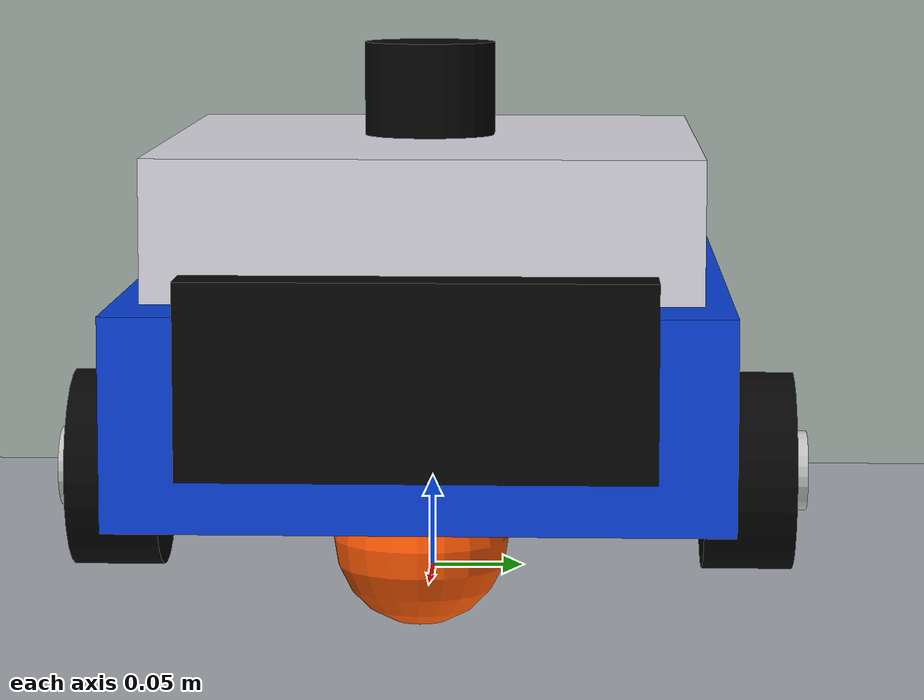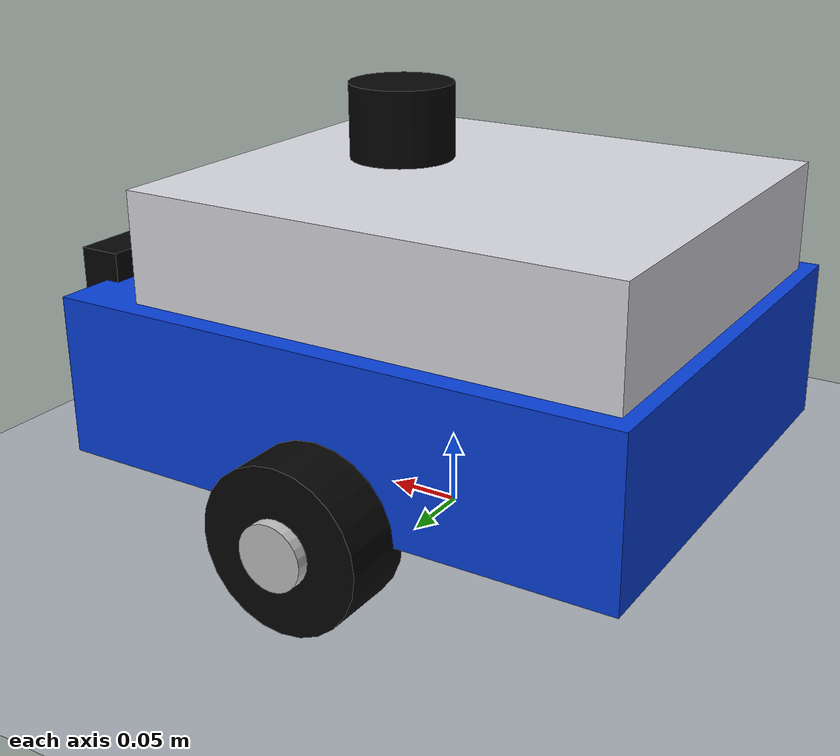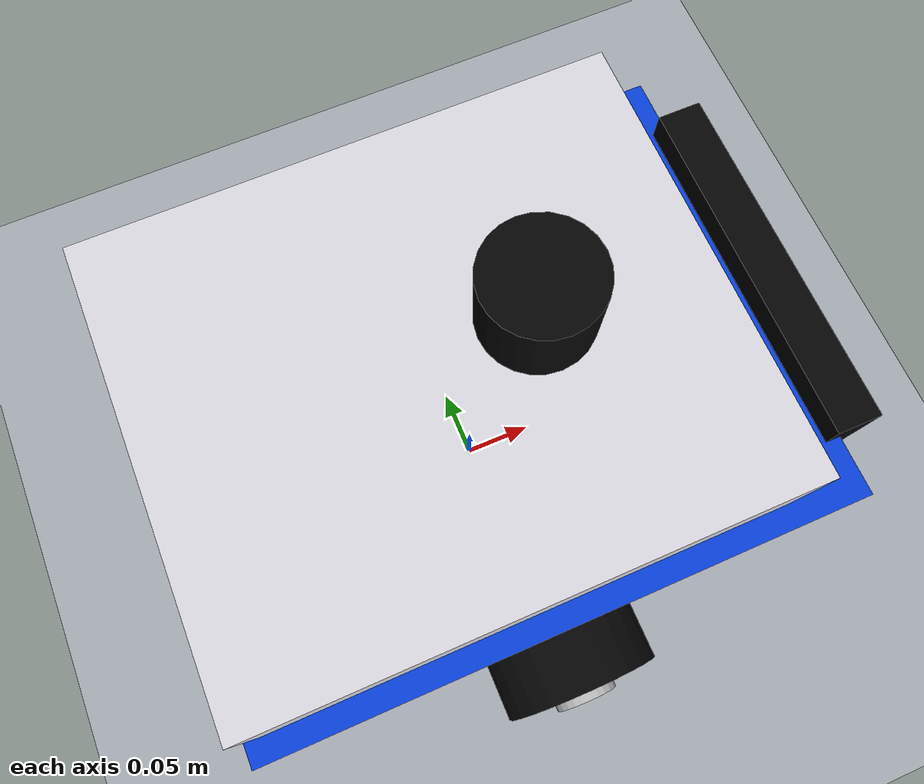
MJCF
<mujoco model="turtlebot3_waffle_pi">

    <option
        timestep="0.002"
        gravity="0 0 -9.81"
        integrator="Euler"/>

    <compiler angle="radian"/>

    <visual>
        <map
            znear="0.01"
            zfar="100"/>

        <quality
            shadowsize="2048"/>

        <headlight
            ambient="0.5 0.5 0.5"
            diffuse="0.8 0.8 0.8"
            specular="0.2 0.2 0.2"/>

        <global
            offwidth="1600"
            offheight="1000"/>
    </visual>

    <!-- DEFAULT PHYSICS                                   -->

    <default>

        <joint
            damping="0.5"
            armature="0.01"/>

        <geom
            condim="3"
            friction="1.5 0.5 0.1"/>

    </default>

    <!-- MATERIALS                                         -->

    <asset>

        <!-- Floor -->
        <material
            name="floor"
            rgba="0.65 0.67 0.70 1"/>

        <!-- Main blue chassis -->
        <material
            name="blue"
            rgba="0.03 0.25 0.85 1"/>

        <!-- Upper light body -->
        <material
            name="body_light"
            rgba="0.85 0.85 0.88 1"/>

        <!-- Black parts and wheels -->
        <material
            name="black"
            rgba="0.02 0.02 0.02 1"/>

        <!-- Wheel hubs -->
        <material
            name="hub"
            rgba="0.75 0.75 0.75 1"/>

        <!-- Orange caster -->
        <material
            name="orange"
            rgba="1.0 0.35 0.02 1"/>

    </asset>

    <!-- WORLD                                             -->

    <worldbody>

        <!-- Floor -->
        <geom
            name="floor"
            type="plane"
            pos="0 0 0"
            size="25 25 0.1"
            material="floor"/>

        <!-- Lighting -->
        <light
            name="key_light"
            pos="2 -3 5"
            directional="true"
            diffuse="1 1 1"
            specular="0.2 0.2 0.2"/>

        <light
            name="fill_light"
            pos="-3 2 4"
            directional="true"
            diffuse="0.6 0.6 0.6"/>

        <!-- TURTLEBOT3 WAFFLE PI                              -->

        <body
            name="base_link"
            pos="0 0 0.11">

            <!-- PLANAR MOVEMENT                                -->

            <joint
                name="base_x"
                type="slide"
                axis="1 0 0"
                damping="1"/>

            <joint
                name="base_y"
                type="slide"
                axis="0 1 0"
                damping="1"/>

            <joint
                name="base_yaw"
                type="hinge"
                axis="0 0 1"
                damping="1"/>

            <!-- MAIN CHASSIS                                   -->

            <geom
                name="base_chassis"
                type="box"
                pos="0 0 0"
                size="0.20 0.16 0.055"
                mass="2.0"
                material="blue"/>

            <!-- UPPER BODY                                    -->

            <geom
                name="upper_body"
                type="box"
                pos="-0.02 0 0.09"
                size="0.17 0.145 0.04"
                mass="0.4"
                material="body_light"/>

            <!-- FRONT PANEL                                   -->

            <geom
                name="front_panel"
                type="box"
                pos="0.205 0 0.025"
                size="0.015 0.12 0.05"
                mass="0.05"
                material="black"/>

            <!-- LEFT WHEEL                                    -->

            <body
                name="left_wheel"
                pos="0 0.175 -0.055">

                <joint
                    name="left_wheel_joint"
                    type="hinge"
                    axis="0 1 0"
                    damping="0.05"/>

                <geom
                    name="left_wheel"
                    type="cylinder"
                    size="0.055 0.025"
                    mass="0.20"
                    euler="1.5707963 0 0"
                    material="black"/>

                <geom
                    name="left_hub"
                    type="cylinder"
                    pos="0 0.027 0"
                    size="0.022 0.006"
                    euler="1.5707963 0 0"
                    material="hub"/>

            </body>

            <!-- RIGHT WHEEL                                   -->

            <body
                name="right_wheel"
                pos="0 -0.175 -0.055">

                <joint
                    name="right_wheel_joint"
                    type="hinge"
                    axis="0 1 0"
                    damping="0.05"/>

                <geom
                    name="right_wheel"
                    type="cylinder"
                    size="0.055 0.025"
                    mass="0.20"
                    euler="1.5707963 0 0"
                    material="black"/>

                <geom
                    name="right_hub"
                    type="cylinder"
                    pos="0 -0.027 0"
                    size="0.022 0.006"
                    euler="1.5707963 0 0"
                    material="hub"/>

            </body>

            <!-- FRONT CASTER                                  -->

            <body
                name="front_caster"
                pos="0.15 0 -0.065">

                <geom
                    name="caster"
                    type="sphere"
                    size="0.045"
                    mass="0.10"
                    material="orange"/>

            </body>

            <!-- TOP SENSOR                                    -->

            <body
                name="sensor"
                pos="0.04 0 0.16">

                <geom
                    name="sensor_body"
                    type="cylinder"
                    size="0.035 0.025"
                    mass="0.05"
                    material="black"/>

            </body>

        </body>

    </worldbody>

    <!-- WHEEL MOTORS                                      -->

    <actuator>

        <velocity
            name="left_motor"
            joint="left_wheel_joint"
            kv="5"/>

        <velocity
            name="right_motor"
            joint="right_wheel_joint"
            kv="5"/>

    </actuator>

</mujoco>
